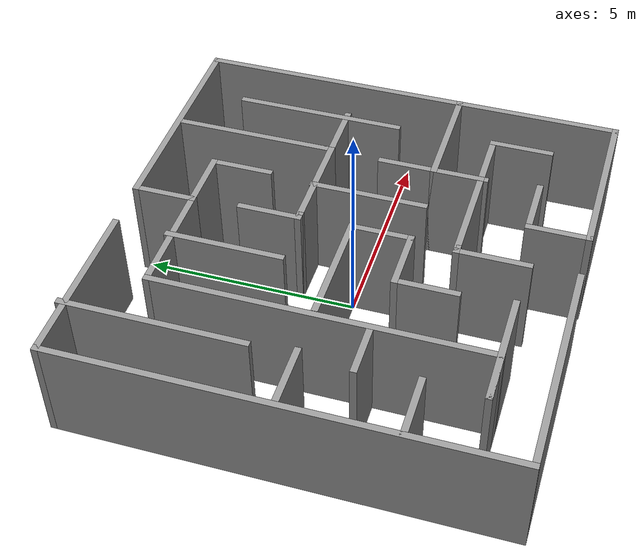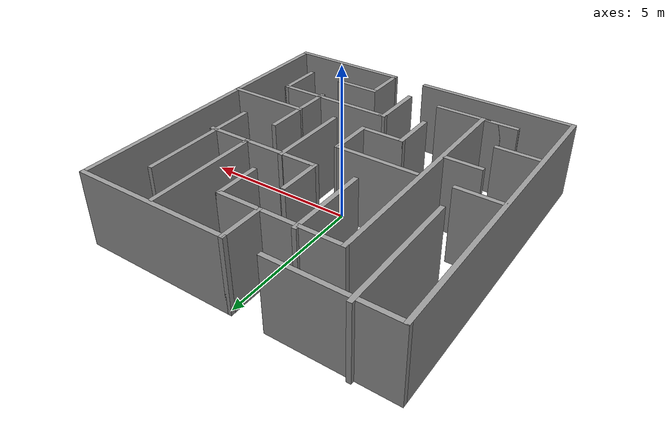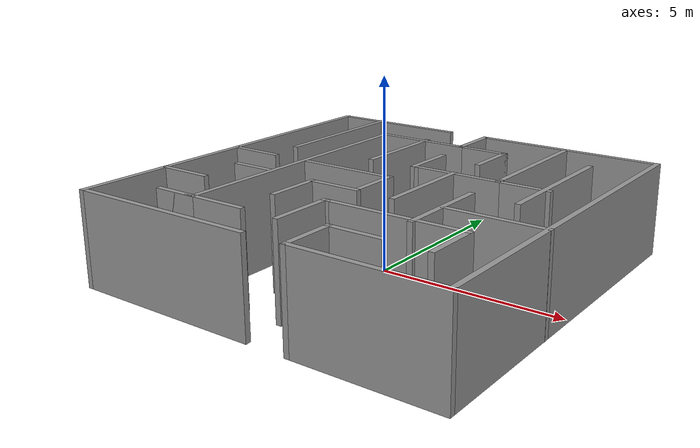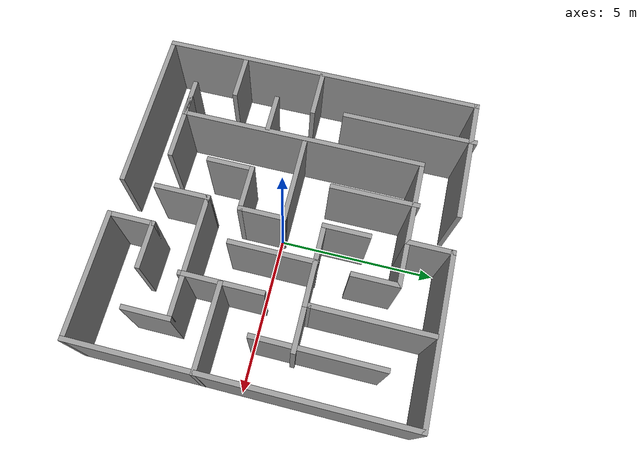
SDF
<?xml version='1.0'?>
<sdf version='1.7'>
  <model name='Maze_2'>
    <pose>-0.032448 0.100774 0 0 -0 0</pose>
    <link name='Wall_1'>
      <collision name='Wall_1_Collision'>
        <geometry>
          <box>
            <size>10.25 0.15 2.5</size>
          </box>
        </geometry>
        <pose>0 0 1.25 0 -0 0</pose>
      </collision>
      <visual name='Wall_1_Visual'>
        <pose>0 0 1.25 0 -0 0</pose>
        <geometry>
          <box>
            <size>10.25 0.15 2.5</size>
          </box>
        </geometry>
        <material>
          <script>
            <uri>file://media/materials/scripts/gazebo.material</uri>
            <name>Gazebo/Grey</name>
          </script>
          <ambient>1 1 1 1</ambient>
        </material>
        <meta>
          <layer>0</layer>
        </meta>
      </visual>
      <pose>-5.08154 -0.056052 0 0 -0 -1.5708</pose>
    </link>
    <link name='Wall_10'>
      <collision name='Wall_10_Collision'>
        <geometry>
          <box>
            <size>5.25 0.15 2.5</size>
          </box>
        </geometry>
        <pose>0 0 1.25 0 -0 0</pose>
      </collision>
      <visual name='Wall_10_Visual'>
        <pose>0 0 1.25 0 -0 0</pose>
        <geometry>
          <box>
            <size>5.25 0.15 2.5</size>
          </box>
        </geometry>
        <material>
          <script>
            <uri>file://media/materials/scripts/gazebo.material</uri>
            <name>Gazebo/Grey</name>
          </script>
          <ambient>1 1 1 1</ambient>
        </material>
        <meta>
          <layer>0</layer>
        </meta>
      </visual>
      <pose>2.52784 4.99701 0 0 -0 0</pose>
    </link>
    <link name='Wall_11'>
      <collision name='Wall_11_Collision'>
        <geometry>
          <box>
            <size>10.25 0.15 2.5</size>
          </box>
        </geometry>
        <pose>0 0 1.25 0 -0 0</pose>
      </collision>
      <visual name='Wall_11_Visual'>
        <pose>0 0 1.25 0 -0 0</pose>
        <geometry>
          <box>
            <size>10.25 0.15 2.5</size>
          </box>
        </geometry>
        <material>
          <script>
            <uri>file://media/materials/scripts/gazebo.material</uri>
            <name>Gazebo/Grey</name>
          </script>
          <ambient>1 1 1 1</ambient>
        </material>
        <meta>
          <layer>0</layer>
        </meta>
      </visual>
      <pose>5.07784 -0.052992 0 0 -0 -1.5708</pose>
    </link>
    <link name='Wall_12'>
      <collision name='Wall_12_Collision'>
        <geometry>
          <box>
            <size>4 0.15 2.5</size>
          </box>
        </geometry>
        <pose>0 0 1.25 0 -0 0</pose>
      </collision>
      <visual name='Wall_12_Visual'>
        <pose>0 0 1.25 0 -0 0</pose>
        <geometry>
          <box>
            <size>4 0.15 2.5</size>
          </box>
        </geometry>
        <material>
          <script>
            <uri>file://media/materials/scripts/gazebo.material</uri>
            <name>Gazebo/Grey</name>
          </script>
          <ambient>1 1 1 1</ambient>
        </material>
        <meta>
          <layer>0</layer>
        </meta>
      </visual>
      <pose>3.15284 -5.10299 0 0 -0 3.14159</pose>
    </link>
    <link name='Wall_13'>
      <collision name='Wall_13_Collision'>
        <geometry>
          <box>
            <size>1.5 0.15 2.5</size>
          </box>
        </geometry>
        <pose>0 0 1.25 0 -0 0</pose>
      </collision>
      <visual name='Wall_13_Visual'>
        <pose>0 0 1.25 0 -0 0</pose>
        <geometry>
          <box>
            <size>1.5 0.15 2.5</size>
          </box>
        </geometry>
        <material>
          <script>
            <uri>file://media/materials/scripts/gazebo.material</uri>
            <name>Gazebo/Grey</name>
          </script>
          <ambient>1 1 1 1</ambient>
        </material>
        <meta>
          <layer>0</layer>
        </meta>
      </visual>
      <pose>1.22784 -4.42799 0 0 -0 1.5708</pose>
    </link>
    <link name='Wall_14'>
      <collision name='Wall_14_Collision'>
        <geometry>
          <box>
            <size>1.5 0.15 2.5</size>
          </box>
        </geometry>
        <pose>0 0 1.25 0 -0 0</pose>
      </collision>
      <visual name='Wall_14_Visual'>
        <pose>0 0 1.25 0 -0 0</pose>
        <geometry>
          <box>
            <size>1.5 0.15 2.5</size>
          </box>
        </geometry>
        <material>
          <script>
            <uri>file://media/materials/scripts/gazebo.material</uri>
            <name>Gazebo/Grey</name>
          </script>
          <ambient>1 1 1 1</ambient>
        </material>
        <meta>
          <layer>0</layer>
        </meta>
      </visual>
      <pose>1.90284 -3.75299 0 0 -0 0</pose>
    </link>
    <link name='Wall_16'>
      <collision name='Wall_16_Collision'>
        <geometry>
          <box>
            <size>3.75 0.15 2.5</size>
          </box>
        </geometry>
        <pose>0 0 1.25 0 -0 0</pose>
      </collision>
      <visual name='Wall_16_Visual'>
        <pose>0 0 1.25 0 -0 0</pose>
        <geometry>
          <box>
            <size>3.75 0.15 2.5</size>
          </box>
        </geometry>
        <material>
          <script>
            <uri>file://media/materials/scripts/gazebo.material</uri>
            <name>Gazebo/Grey</name>
          </script>
          <ambient>1 1 1 1</ambient>
        </material>
        <meta>
          <layer>0</layer>
        </meta>
      </visual>
      <pose>2.51683 3.07465 0 0 -0 -1.5708</pose>
    </link>
    <link name='Wall_17'>
      <collision name='Wall_17_Collision'>
        <geometry>
          <box>
            <size>0.25 0.15 2.5</size>
          </box>
        </geometry>
        <pose>0 0 1.25 0 -0 0</pose>
      </collision>
      <visual name='Wall_17_Visual'>
        <pose>0 0 1.25 0 -0 0</pose>
        <geometry>
          <box>
            <size>0.25 0.15 2.5</size>
          </box>
        </geometry>
        <material>
          <script>
            <uri>file://media/materials/scripts/gazebo.material</uri>
            <name>Gazebo/Grey</name>
          </script>
          <ambient>1 1 1 1</ambient>
        </material>
        <meta>
          <layer>0</layer>
        </meta>
      </visual>
      <pose>2.51683 1.22465 0 0 -0 -1.5708</pose>
    </link>
    <link name='Wall_18'>
      <collision name='Wall_18_Collision'>
        <geometry>
          <box>
            <size>2.5 0.15 2.5</size>
          </box>
        </geometry>
        <pose>0 0 1.25 0 -0 0</pose>
      </collision>
      <visual name='Wall_18_Visual'>
        <pose>0 0 1.25 0 -0 0</pose>
        <geometry>
          <box>
            <size>2.5 0.15 2.5</size>
          </box>
        </geometry>
        <material>
          <script>
            <uri>file://media/materials/scripts/gazebo.material</uri>
            <name>Gazebo/Grey</name>
          </script>
          <ambient>1 1 1 1</ambient>
        </material>
        <meta>
          <layer>0</layer>
        </meta>
      </visual>
      <pose>1.34183 1.17465 0 0 -0 3.14159</pose>
    </link>
    <link name='Wall_19'>
      <collision name='Wall_19_Collision'>
        <geometry>
          <box>
            <size>0.25 0.15 2.5</size>
          </box>
        </geometry>
        <pose>0 0 1.25 0 -0 0</pose>
      </collision>
      <visual name='Wall_19_Visual'>
        <pose>0 0 1.25 0 -0 0</pose>
        <geometry>
          <box>
            <size>0.25 0.15 2.5</size>
          </box>
        </geometry>
        <material>
          <script>
            <uri>file://media/materials/scripts/gazebo.material</uri>
            <name>Gazebo/Grey</name>
          </script>
          <ambient>1 1 1 1</ambient>
        </material>
        <meta>
          <layer>0</layer>
        </meta>
      </visual>
      <pose>0.116831 1.17465 0 0 -0 3.14159</pose>
    </link>
    <link name='Wall_20'>
      <collision name='Wall_20_Collision'>
        <geometry>
          <box>
            <size>1.5 0.15 2.5</size>
          </box>
        </geometry>
        <pose>0 0 1.25 0 -0 0</pose>
      </collision>
      <visual name='Wall_20_Visual'>
        <pose>0 0 1.25 0 -0 0</pose>
        <geometry>
          <box>
            <size>1.5 0.15 2.5</size>
          </box>
        </geometry>
        <material>
          <script>
            <uri>file://media/materials/scripts/gazebo.material</uri>
            <name>Gazebo/Grey</name>
          </script>
          <ambient>1 1 1 1</ambient>
        </material>
        <meta>
          <layer>0</layer>
        </meta>
      </visual>
      <pose>0.066831 1.84965 0 0 -0 1.5708</pose>
    </link>
    <link name='Wall_22'>
      <collision name='Wall_22_Collision'>
        <geometry>
          <box>
            <size>4 0.15 2.5</size>
          </box>
        </geometry>
        <pose>0 0 1.25 0 -0 0</pose>
      </collision>
      <visual name='Wall_22_Visual'>
        <pose>0 0 1.25 0 -0 0</pose>
        <geometry>
          <box>
            <size>4 0.15 2.5</size>
          </box>
        </geometry>
        <material>
          <script>
            <uri>file://media/materials/scripts/gazebo.material</uri>
            <name>Gazebo/Grey</name>
          </script>
          <ambient>1 1 1 1</ambient>
        </material>
        <meta>
          <layer>0</layer>
        </meta>
      </visual>
      <pose>3.7487 1.83274 0 0 -0 -1.5708</pose>
    </link>
    <link name='Wall_24'>
      <collision name='Wall_24_Collision'>
        <geometry>
          <box>
            <size>2.5 0.15 2.5</size>
          </box>
        </geometry>
        <pose>0 0 1.25 0 -0 0</pose>
      </collision>
      <visual name='Wall_24_Visual'>
        <pose>0 0 1.25 0 -0 0</pose>
        <geometry>
          <box>
            <size>2.5 0.15 2.5</size>
          </box>
        </geometry>
        <material>
          <script>
            <uri>file://media/materials/scripts/gazebo.material</uri>
            <name>Gazebo/Grey</name>
          </script>
          <ambient>1 1 1 1</ambient>
        </material>
        <meta>
          <layer>0</layer>
        </meta>
      </visual>
      <pose>2.48154 -1.23884 0 0 -0 -1.5708</pose>
    </link>
    <link name='Wall_25'>
      <collision name='Wall_25_Collision'>
        <geometry>
          <box>
            <size>0.25 0.15 2.5</size>
          </box>
        </geometry>
        <pose>0 0 1.25 0 -0 0</pose>
      </collision>
      <visual name='Wall_25_Visual'>
        <pose>0 0 1.25 0 -0 0</pose>
        <geometry>
          <box>
            <size>0.25 0.15 2.5</size>
          </box>
        </geometry>
        <material>
          <script>
            <uri>file://media/materials/scripts/gazebo.material</uri>
            <name>Gazebo/Grey</name>
          </script>
          <ambient>1 1 1 1</ambient>
        </material>
        <meta>
          <layer>0</layer>
        </meta>
      </visual>
      <pose>2.48154 -2.46384 0 0 -0 -1.5708</pose>
    </link>
    <link name='Wall_33'>
      <collision name='Wall_33_Collision'>
        <geometry>
          <box>
            <size>0.25 0.15 2.5</size>
          </box>
        </geometry>
        <pose>0 0 1.25 0 -0 0</pose>
      </collision>
      <visual name='Wall_33_Visual'>
        <pose>0 0 1.25 0 -0 0</pose>
        <geometry>
          <box>
            <size>0.25 0.15 2.5</size>
          </box>
        </geometry>
        <material>
          <script>
            <uri>file://media/materials/scripts/gazebo.material</uri>
            <name>Gazebo/Grey</name>
          </script>
          <ambient>1 1 1 1</ambient>
        </material>
        <meta>
          <layer>0</layer>
        </meta>
      </visual>
      <pose>2.48154 -2.46384 0 0 -0 -1.5708</pose>
    </link>
    <link name='Wall_37'>
      <collision name='Wall_37_Collision'>
        <geometry>
          <box>
            <size>2.5 0.15 2.5</size>
          </box>
        </geometry>
        <pose>0 0 1.25 0 -0 0</pose>
      </collision>
      <visual name='Wall_37_Visual'>
        <pose>0 0 1.25 0 -0 0</pose>
        <geometry>
          <box>
            <size>2.5 0.15 2.5</size>
          </box>
        </geometry>
        <material>
          <script>
            <uri>file://media/materials/scripts/gazebo.material</uri>
            <name>Gazebo/Grey</name>
          </script>
          <ambient>1 1 1 1</ambient>
        </material>
        <meta>
          <layer>0</layer>
        </meta>
      </visual>
      <pose>1.30654 -2.41384 0 0 -0 3.14159</pose>
    </link>
    <link name='Wall_38'>
      <collision name='Wall_38_Collision'>
        <geometry>
          <box>
            <size>0.25 0.15 2.5</size>
          </box>
        </geometry>
        <pose>0 0 1.25 0 -0 0</pose>
      </collision>
      <visual name='Wall_38_Visual'>
        <pose>0 0 1.25 0 -0 0</pose>
        <geometry>
          <box>
            <size>0.25 0.15 2.5</size>
          </box>
        </geometry>
        <material>
          <script>
            <uri>file://media/materials/scripts/gazebo.material</uri>
            <name>Gazebo/Grey</name>
          </script>
          <ambient>1 1 1 1</ambient>
        </material>
        <meta>
          <layer>0</layer>
        </meta>
      </visual>
      <pose>0.081541 -2.41384 0 0 -0 3.14159</pose>
    </link>
    <link name='Wall_39'>
      <collision name='Wall_39_Collision'>
        <geometry>
          <box>
            <size>1.75 0.15 2.5</size>
          </box>
        </geometry>
        <pose>0 0 1.25 0 -0 0</pose>
      </collision>
      <visual name='Wall_39_Visual'>
        <pose>0 0 1.25 0 -0 0</pose>
        <geometry>
          <box>
            <size>1.75 0.15 2.5</size>
          </box>
        </geometry>
        <material>
          <script>
            <uri>file://media/materials/scripts/gazebo.material</uri>
            <name>Gazebo/Grey</name>
          </script>
          <ambient>1 1 1 1</ambient>
        </material>
        <meta>
          <layer>0</layer>
        </meta>
      </visual>
      <pose>0.031541 -3.21384 0 0 -0 -1.5708</pose>
    </link>
    <link name='Wall_41'>
      <collision name='Wall_41_Collision'>
        <geometry>
          <box>
            <size>1.5 0.15 2.5</size>
          </box>
        </geometry>
        <pose>0 0 1.25 0 -0 0</pose>
      </collision>
      <visual name='Wall_41_Visual'>
        <pose>0 0 1.25 0 -0 0</pose>
        <geometry>
          <box>
            <size>1.5 0.15 2.5</size>
          </box>
        </geometry>
        <material>
          <script>
            <uri>file://media/materials/scripts/gazebo.material</uri>
            <name>Gazebo/Grey</name>
          </script>
          <ambient>1 1 1 1</ambient>
        </material>
        <meta>
          <layer>0</layer>
        </meta>
      </visual>
      <pose>3.15654 -2.41384 0 0 -0 0</pose>
    </link>
    <link name='Wall_42'>
      <collision name='Wall_42_Collision'>
        <geometry>
          <box>
            <size>1.5 0.15 2.5</size>
          </box>
        </geometry>
        <pose>0 0 1.25 0 -0 0</pose>
      </collision>
      <visual name='Wall_42_Visual'>
        <pose>0 0 1.25 0 -0 0</pose>
        <geometry>
          <box>
            <size>1.5 0.15 2.5</size>
          </box>
        </geometry>
        <material>
          <script>
            <uri>file://media/materials/scripts/gazebo.material</uri>
            <name>Gazebo/Grey</name>
          </script>
          <ambient>1 1 1 1</ambient>
        </material>
        <meta>
          <layer>0</layer>
        </meta>
      </visual>
      <pose>3.83154 -3.08884 0 0 -0 -1.5708</pose>
    </link>
    <link name='Wall_44'>
      <collision name='Wall_44_Collision'>
        <geometry>
          <box>
            <size>2.75 0.15 2.5</size>
          </box>
        </geometry>
        <pose>0 0 1.25 0 -0 0</pose>
      </collision>
      <visual name='Wall_44_Visual'>
        <pose>0 0 1.25 0 -0 0</pose>
        <geometry>
          <box>
            <size>2.75 0.15 2.5</size>
          </box>
        </geometry>
        <material>
          <script>
            <uri>file://media/materials/scripts/gazebo.material</uri>
            <name>Gazebo/Grey</name>
          </script>
          <ambient>1 1 1 1</ambient>
        </material>
        <meta>
          <layer>0</layer>
        </meta>
      </visual>
      <pose>3.78154 -1.31088 0 0 -0 0</pose>
    </link>
    <link name='Wall_46'>
      <collision name='Wall_46_Collision'>
        <geometry>
          <box>
            <size>2.75 0.15 2.5</size>
          </box>
        </geometry>
        <pose>0 0 1.25 0 -0 0</pose>
      </collision>
      <visual name='Wall_46_Visual'>
        <pose>0 0 1.25 0 -0 0</pose>
        <geometry>
          <box>
            <size>2.75 0.15 2.5</size>
          </box>
        </geometry>
        <material>
          <script>
            <uri>file://media/materials/scripts/gazebo.material</uri>
            <name>Gazebo/Grey</name>
          </script>
          <ambient>1 1 1 1</ambient>
        </material>
        <meta>
          <layer>0</layer>
        </meta>
      </visual>
      <pose>1.22712 -0.09879 0 0 -0 -1.5708</pose>
    </link>
    <link name='Wall_48'>
      <collision name='Wall_48_Collision'>
        <geometry>
          <box>
            <size>1.5 0.15 2.5</size>
          </box>
        </geometry>
        <pose>0 0 1.25 0 -0 0</pose>
      </collision>
      <visual name='Wall_48_Visual'>
        <pose>0 0 1.25 0 -0 0</pose>
        <geometry>
          <box>
            <size>1.5 0.15 2.5</size>
          </box>
        </geometry>
        <material>
          <script>
            <uri>file://media/materials/scripts/gazebo.material</uri>
            <name>Gazebo/Grey</name>
          </script>
          <ambient>1 1 1 1</ambient>
        </material>
        <meta>
          <layer>0</layer>
        </meta>
      </visual>
      <pose>3.19183 1.17465 0 0 -0 0</pose>
    </link>
    <link name='Wall_50'>
      <collision name='Wall_50_Collision'>
        <geometry>
          <box>
            <size>1.5 0.15 2.5</size>
          </box>
        </geometry>
        <pose>0 0 1.25 0 -0 0</pose>
      </collision>
      <visual name='Wall_50_Visual'>
        <pose>0 0 1.25 0 -0 0</pose>
        <geometry>
          <box>
            <size>1.5 0.15 2.5</size>
          </box>
        </geometry>
        <material>
          <script>
            <uri>file://media/materials/scripts/gazebo.material</uri>
            <name>Gazebo/Grey</name>
          </script>
          <ambient>1 1 1 1</ambient>
        </material>
        <meta>
          <layer>0</layer>
        </meta>
      </visual>
      <pose>-0.022158 4.32201 0 0 -0 -1.5708</pose>
    </link>
    <link name='Wall_51'>
      <collision name='Wall_51_Collision'>
        <geometry>
          <box>
            <size>2.75 0.15 2.5</size>
          </box>
        </geometry>
        <pose>0 0 1.25 0 -0 0</pose>
      </collision>
      <visual name='Wall_51_Visual'>
        <pose>0 0 1.25 0 -0 0</pose>
        <geometry>
          <box>
            <size>2.75 0.15 2.5</size>
          </box>
        </geometry>
        <material>
          <script>
            <uri>file://media/materials/scripts/gazebo.material</uri>
            <name>Gazebo/Grey</name>
          </script>
          <ambient>1 1 1 1</ambient>
        </material>
        <meta>
          <layer>0</layer>
        </meta>
      </visual>
      <pose>-1.32216 3.64701 0 0 -0 3.14159</pose>
    </link>
    <link name='Wall_52'>
      <collision name='Wall_52_Collision'>
        <geometry>
          <box>
            <size>7.75 0.15 2.5</size>
          </box>
        </geometry>
        <pose>0 0 1.25 0 -0 0</pose>
      </collision>
      <visual name='Wall_52_Visual'>
        <pose>0 0 1.25 0 -0 0</pose>
        <geometry>
          <box>
            <size>7.75 0.15 2.5</size>
          </box>
        </geometry>
        <material>
          <script>
            <uri>file://media/materials/scripts/gazebo.material</uri>
            <name>Gazebo/Grey</name>
          </script>
          <ambient>1 1 1 1</ambient>
        </material>
        <meta>
          <layer>0</layer>
        </meta>
      </visual>
      <pose>-2.62216 -0.152992 0 0 -0 -1.5708</pose>
    </link>
    <link name='Wall_53'>
      <collision name='Wall_53_Collision'>
        <geometry>
          <box>
            <size>1.25 0.15 2.5</size>
          </box>
        </geometry>
        <pose>0 0 1.25 0 -0 0</pose>
      </collision>
      <visual name='Wall_53_Visual'>
        <pose>0 0 1.25 0 -0 0</pose>
        <geometry>
          <box>
            <size>1.25 0.15 2.5</size>
          </box>
        </geometry>
        <material>
          <script>
            <uri>file://media/materials/scripts/gazebo.material</uri>
            <name>Gazebo/Grey</name>
          </script>
          <ambient>1 1 1 1</ambient>
        </material>
        <meta>
          <layer>0</layer>
        </meta>
      </visual>
      <pose>-3.17216 -3.95299 0 0 -0 3.14159</pose>
    </link>
    <link name='Wall_54'>
      <collision name='Wall_54_Collision'>
        <geometry>
          <box>
            <size>2.75 0.15 2.5</size>
          </box>
        </geometry>
        <pose>0 0 1.25 0 -0 0</pose>
      </collision>
      <visual name='Wall_54_Visual'>
        <pose>0 0 1.25 0 -0 0</pose>
        <geometry>
          <box>
            <size>2.75 0.15 2.5</size>
          </box>
        </geometry>
        <material>
          <script>
            <uri>file://media/materials/scripts/gazebo.material</uri>
            <name>Gazebo/Grey</name>
          </script>
          <ambient>1 1 1 1</ambient>
        </material>
        <meta>
          <layer>0</layer>
        </meta>
      </visual>
      <pose>-2.42216 -3.95299 0 0 -0 0</pose>
    </link>
    <link name='Wall_56'>
      <collision name='Wall_56_Collision'>
        <geometry>
          <box>
            <size>1.25 0.15 2.5</size>
          </box>
        </geometry>
        <pose>0 0 1.25 0 -0 0</pose>
      </collision>
      <visual name='Wall_56_Visual'>
        <pose>0 0 1.25 0 -0 0</pose>
        <geometry>
          <box>
            <size>1.25 0.15 2.5</size>
          </box>
        </geometry>
        <material>
          <script>
            <uri>file://media/materials/scripts/gazebo.material</uri>
            <name>Gazebo/Grey</name>
          </script>
          <ambient>1 1 1 1</ambient>
        </material>
        <meta>
          <layer>0</layer>
        </meta>
      </visual>
      <pose>-3.2629 -1.2613 0 0 -0 3.14159</pose>
    </link>
    <link name='Wall_58'>
      <collision name='Wall_58_Collision'>
        <geometry>
          <box>
            <size>1.5 0.15 2.5</size>
          </box>
        </geometry>
        <pose>0 0 1.25 0 -0 0</pose>
      </collision>
      <visual name='Wall_58_Visual'>
        <pose>0 0 1.25 0 -0 0</pose>
        <geometry>
          <box>
            <size>1.5 0.15 2.5</size>
          </box>
        </geometry>
        <material>
          <script>
            <uri>file://media/materials/scripts/gazebo.material</uri>
            <name>Gazebo/Grey</name>
          </script>
          <ambient>1 1 1 1</ambient>
        </material>
        <meta>
          <layer>0</layer>
        </meta>
      </visual>
      <pose>-4.32452 -0.030047 0 0 -0 0</pose>
    </link>
    <link name='Wall_6'>
      <collision name='Wall_6_Collision'>
        <geometry>
          <box>
            <size>5.25 0.15 2.5</size>
          </box>
        </geometry>
        <pose>0 0 1.25 0 -0 0</pose>
      </collision>
      <visual name='Wall_6_Visual'>
        <pose>0 0 1.25 0 -0 0</pose>
        <geometry>
          <box>
            <size>5.25 0.15 2.5</size>
          </box>
        </geometry>
        <material>
          <script>
            <uri>file://media/materials/scripts/gazebo.material</uri>
            <name>Gazebo/Grey</name>
          </script>
          <ambient>1 1 1 1</ambient>
        </material>
        <meta>
          <layer>0</layer>
        </meta>
      </visual>
      <pose>-2.53154 -5.10605 0 0 -0 0</pose>
    </link>
    <link name='Wall_60'>
      <collision name='Wall_60_Collision'>
        <geometry>
          <box>
            <size>1.5 0.15 2.5</size>
          </box>
        </geometry>
        <pose>0 0 1.25 0 -0 0</pose>
      </collision>
      <visual name='Wall_60_Visual'>
        <pose>0 0 1.25 0 -0 0</pose>
        <geometry>
          <box>
            <size>1.5 0.15 2.5</size>
          </box>
        </geometry>
        <material>
          <script>
            <uri>file://media/materials/scripts/gazebo.material</uri>
            <name>Gazebo/Grey</name>
          </script>
          <ambient>1 1 1 1</ambient>
        </material>
        <meta>
          <layer>0</layer>
        </meta>
      </visual>
      <pose>-4.3597 -2.5981 0 0 -0 0</pose>
    </link>
    <link name='Wall_63'>
      <collision name='Wall_63_Collision'>
        <geometry>
          <box>
            <size>4.25 0.15 2.5</size>
          </box>
        </geometry>
        <pose>0 0 1.25 0 -0 0</pose>
      </collision>
      <visual name='Wall_63_Visual'>
        <pose>0 0 1.25 0 -0 0</pose>
        <geometry>
          <box>
            <size>4.25 0.15 2.5</size>
          </box>
        </geometry>
        <material>
          <script>
            <uri>file://media/materials/scripts/gazebo.material</uri>
            <name>Gazebo/Grey</name>
          </script>
          <ambient>1 1 1 1</ambient>
        </material>
        <meta>
          <layer>0</layer>
        </meta>
      </visual>
      <pose>-3.76827 3.05605 0 0 -0 -1.5708</pose>
    </link>
    <link name='Wall_65'>
      <collision name='Wall_65_Collision'>
        <geometry>
          <box>
            <size>2.75 0.15 2.5</size>
          </box>
        </geometry>
        <pose>0 0 1.25 0 -0 0</pose>
      </collision>
      <visual name='Wall_65_Visual'>
        <pose>0 0 1.25 0 -0 0</pose>
        <geometry>
          <box>
            <size>2.75 0.15 2.5</size>
          </box>
        </geometry>
        <material>
          <script>
            <uri>file://media/materials/scripts/gazebo.material</uri>
            <name>Gazebo/Grey</name>
          </script>
          <ambient>1 1 1 1</ambient>
        </material>
        <meta>
          <layer>0</layer>
        </meta>
      </visual>
      <pose>-1.16665 -0.030047 0 0 -0 0</pose>
    </link>
    <link name='Wall_66'>
      <collision name='Wall_66_Collision'>
        <geometry>
          <box>
            <size>1.5 0.15 2.5</size>
          </box>
        </geometry>
        <pose>0 0 1.25 0 -0 0</pose>
      </collision>
      <visual name='Wall_66_Visual'>
        <pose>0 0 1.25 0 -0 0</pose>
        <geometry>
          <box>
            <size>1.5 0.15 2.5</size>
          </box>
        </geometry>
        <material>
          <script>
            <uri>file://media/materials/scripts/gazebo.material</uri>
            <name>Gazebo/Grey</name>
          </script>
          <ambient>1 1 1 1</ambient>
        </material>
        <meta>
          <layer>0</layer>
        </meta>
      </visual>
      <pose>0.133349 -0.705047 0 0 -0 -1.5708</pose>
    </link>
    <link name='Wall_67'>
      <collision name='Wall_67_Collision'>
        <geometry>
          <box>
            <size>1.5 0.15 2.5</size>
          </box>
        </geometry>
        <pose>0 0 1.25 0 -0 0</pose>
      </collision>
      <visual name='Wall_67_Visual'>
        <pose>0 0 1.25 0 -0 0</pose>
        <geometry>
          <box>
            <size>1.5 0.15 2.5</size>
          </box>
        </geometry>
        <material>
          <script>
            <uri>file://media/materials/scripts/gazebo.material</uri>
            <name>Gazebo/Grey</name>
          </script>
          <ambient>1 1 1 1</ambient>
        </material>
        <meta>
          <layer>0</layer>
        </meta>
      </visual>
      <pose>-0.541651 -1.38005 0 0 -0 3.14159</pose>
    </link>
    <link name='Wall_68'>
      <collision name='Wall_68_Collision'>
        <geometry>
          <box>
            <size>1.5 0.15 2.5</size>
          </box>
        </geometry>
        <pose>0 0 1.25 0 -0 0</pose>
      </collision>
      <visual name='Wall_68_Visual'>
        <pose>0 0 1.25 0 -0 0</pose>
        <geometry>
          <box>
            <size>1.5 0.15 2.5</size>
          </box>
        </geometry>
        <material>
          <script>
            <uri>file://media/materials/scripts/gazebo.material</uri>
            <name>Gazebo/Grey</name>
          </script>
          <ambient>1 1 1 1</ambient>
        </material>
        <meta>
          <layer>0</layer>
        </meta>
      </visual>
      <pose>-1.21665 -2.05505 0 0 -0 -1.5708</pose>
    </link>
    <link name='Wall_70'>
      <collision name='Wall_70_Collision'>
        <geometry>
          <box>
            <size>2.75 0.15 2.5</size>
          </box>
        </geometry>
        <pose>0 0 1.25 0 -0 0</pose>
      </collision>
      <visual name='Wall_70_Visual'>
        <pose>0 0 1.25 0 -0 0</pose>
        <geometry>
          <box>
            <size>2.75 0.15 2.5</size>
          </box>
        </geometry>
        <material>
          <script>
            <uri>file://media/materials/scripts/gazebo.material</uri>
            <name>Gazebo/Grey</name>
          </script>
          <ambient>1 1 1 1</ambient>
        </material>
        <meta>
          <layer>0</layer>
        </meta>
      </visual>
      <pose>-1.2354 2.43408 0 0 -0 -1.5708</pose>
    </link>
    <link name='Wall_72'>
      <collision name='Wall_72_Collision'>
        <geometry>
          <box>
            <size>1.5 0.15 2.5</size>
          </box>
        </geometry>
        <pose>0 0 1.25 0 -0 0</pose>
      </collision>
      <visual name='Wall_72_Visual'>
        <pose>0 0 1.25 0 -0 0</pose>
        <geometry>
          <box>
            <size>1.5 0.15 2.5</size>
          </box>
        </geometry>
        <material>
          <script>
            <uri>file://media/materials/scripts/gazebo.material</uri>
            <name>Gazebo/Grey</name>
          </script>
          <ambient>1 1 1 1</ambient>
        </material>
        <meta>
          <layer>0</layer>
        </meta>
      </visual>
      <pose>0.652842 3.64701 0 0 -0 0</pose>
    </link>
    <link name='Wall_73'>
      <collision name='Wall_73_Collision'>
        <geometry>
          <box>
            <size>1.5 0.15 2.5</size>
          </box>
        </geometry>
        <pose>0 0 1.25 0 -0 0</pose>
      </collision>
      <visual name='Wall_73_Visual'>
        <pose>0 0 1.25 0 -0 0</pose>
        <geometry>
          <box>
            <size>1.5 0.15 2.5</size>
          </box>
        </geometry>
        <material>
          <script>
            <uri>file://media/materials/scripts/gazebo.material</uri>
            <name>Gazebo/Grey</name>
          </script>
          <ambient>1 1 1 1</ambient>
        </material>
        <meta>
          <layer>0</layer>
        </meta>
      </visual>
      <pose>1.32784 2.97201 0 0 -0 -1.5708</pose>
    </link>
    <link name='Wall_8'>
      <collision name='Wall_8_Collision'>
        <geometry>
          <box>
            <size>4 0.15 2.5</size>
          </box>
        </geometry>
        <pose>0 0 1.25 0 -0 0</pose>
      </collision>
      <visual name='Wall_8_Visual'>
        <pose>0 0 1.25 0 -0 0</pose>
        <geometry>
          <box>
            <size>4 0.15 2.5</size>
          </box>
        </geometry>
        <material>
          <script>
            <uri>file://media/materials/scripts/gazebo.material</uri>
            <name>Gazebo/Grey</name>
          </script>
          <ambient>1 1 1 1</ambient>
        </material>
        <meta>
          <layer>0</layer>
        </meta>
      </visual>
      <pose>-3.15654 4.99395 0 0 -0 0</pose>
    </link>
    <static>1</static>
  </model>
</sdf>
